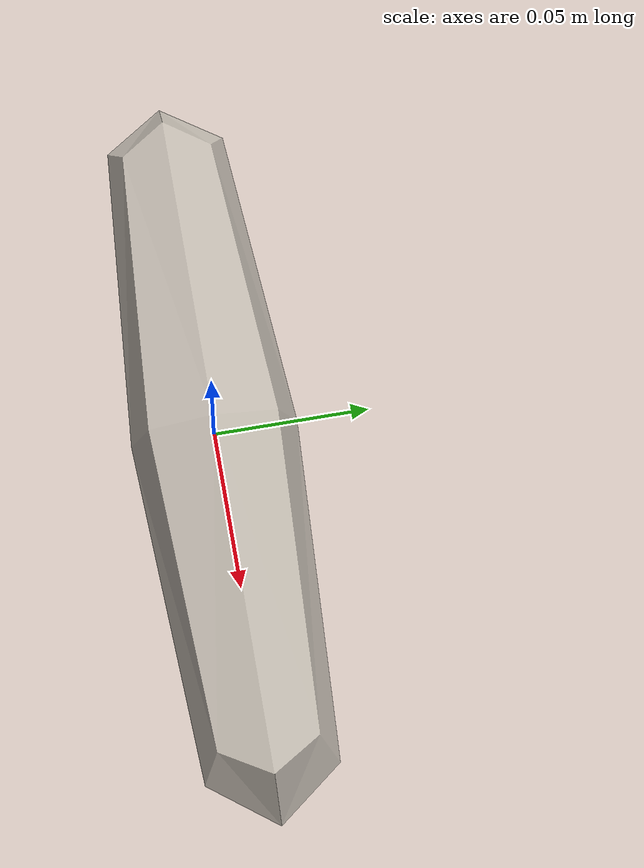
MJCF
<mujoco model="bread">
    <asset>
        <mesh file="meshes/bread.stl" name="bread_mesh" scale="0.8 0.8 0.8"/>
        <texture file="textures/bread.png" type="2d" name="tex-bread"/>
        <material name="bread" reflectance="0.7" texrepeat="15 15" texture="tex-bread" texuniform="true"/>
    </asset>
    <worldbody>
        <body name="object">
            <geom pos="0 0 0" mesh="bread_mesh" type="mesh" solimp="0.998 0.998 0.001" solref="0.001 1" density="50"
                  friction="0.95 0.3 0.1" material="bread" group="0" condim="4" name="bread"/>
        </body>
    </worldbody>
</mujoco>
